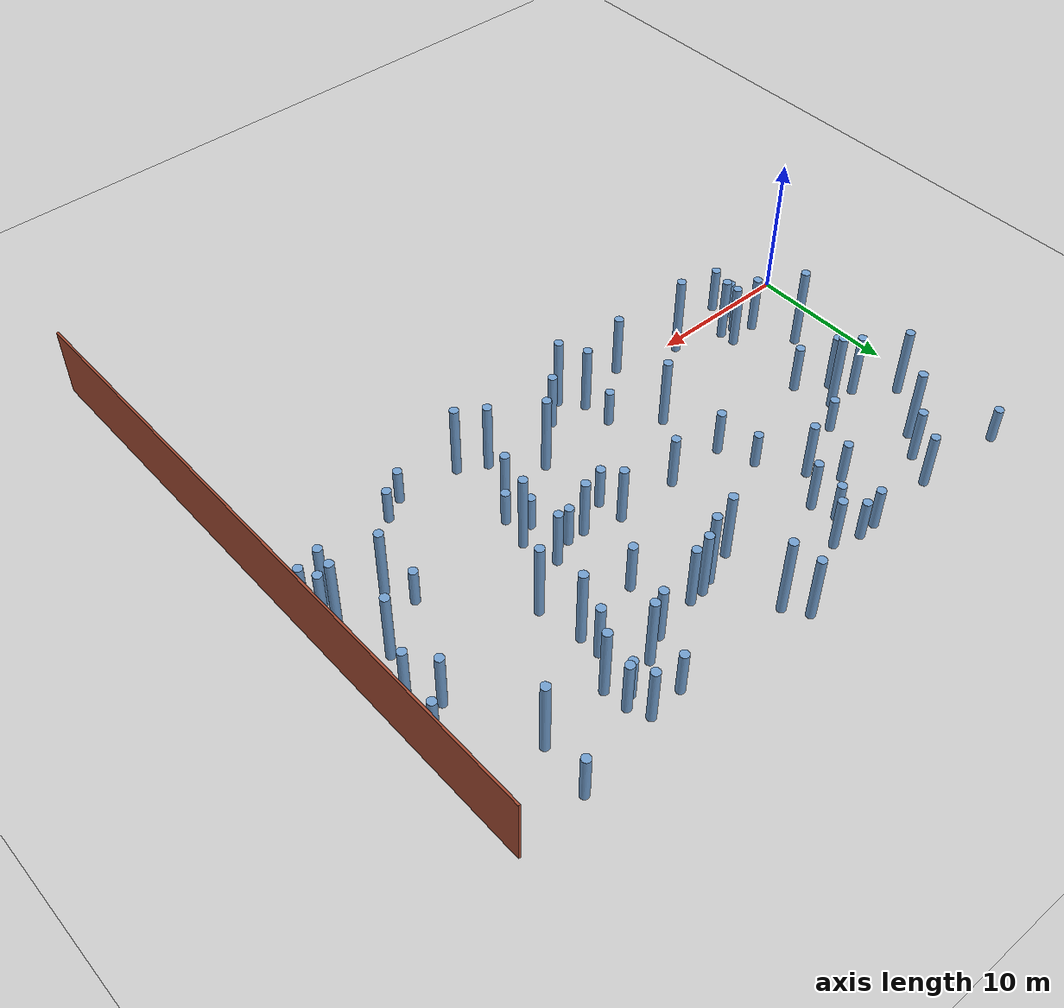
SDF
<sdf version="1.6">
 <world name="random_cylinder_world">
  <model name="ground_plane">
   <static>1</static>
   <link name="link">
    <collision name="collision">
     <geometry><plane><normal>0 0 1</normal><size>95.300000 95.300000</size></plane></geometry>
    </collision>
    <visual name="visual">
     <geometry><plane><normal>0 0 1</normal><size>95.300000 95.300000</size></plane></geometry>
     <material>
      <script><uri>file://media/materials/scripts/gazebo.material</uri><name>Gazebo/Grey</name></script>
     </material>
    </visual>
   </link>
  </model>
  <model name="wall_east">
   <static>1</static>
   <pose>42.575000 0.000000 2.500000 0 0 0</pose>
   <link name="link">
    <collision name="collision">
     <geometry><box><size>0.150000 45.000000 5.000000</size></box></geometry>
    </collision>
    <visual name="visual">
     <geometry><box><size>0.150000 45.000000 5.000000</size></box></geometry>
     <material>
      <script><uri>file://media/materials/scripts/gazebo.material</uri><name>Gazebo/Bricks</name></script>
     </material>
    </visual>
   </link>
  </model>
  <model name="cylinder_0005">
   <static>1</static>
   <pose>31.075353 15.848961 2.046685 0 0 0</pose>
   <link name="link">
    <collision name="collision">
     <geometry><cylinder><radius>0.300000</radius><length>4.093369</length></cylinder></geometry>
    </collision>
    <visual name="visual">
     <geometry><cylinder><radius>0.300000</radius><length>4.093369</length></cylinder></geometry>
     <material><ambient>0.447 0.624 0.812 1</ambient><diffuse>0.447 0.624 0.812 1</diffuse></material>
    </visual>
   </link>
  </model>
  <model name="cylinder_0016">
   <static>1</static>
   <pose>5.747271 17.535446 1.948364 0 0 0</pose>
   <link name="link">
    <collision name="collision">
     <geometry><cylinder><radius>0.300000</radius><length>3.896727</length></cylinder></geometry>
    </collision>
    <visual name="visual">
     <geometry><cylinder><radius>0.300000</radius><length>3.896727</length></cylinder></geometry>
     <material><ambient>0.447 0.624 0.812 1</ambient><diffuse>0.447 0.624 0.812 1</diffuse></material>
    </visual>
   </link>
  </model>
  <model name="cylinder_0019">
   <static>1</static>
   <pose>29.300762 18.098623 2.624567 0 0 0</pose>
   <link name="link">
    <collision name="collision">
     <geometry><cylinder><radius>0.300000</radius><length>5.249134</length></cylinder></geometry>
    </collision>
    <visual name="visual">
     <geometry><cylinder><radius>0.300000</radius><length>5.249134</length></cylinder></geometry>
     <material><ambient>0.447 0.624 0.812 1</ambient><diffuse>0.447 0.624 0.812 1</diffuse></material>
    </visual>
   </link>
  </model>
  <model name="cylinder_0022">
   <static>1</static>
   <pose>29.002762 7.027677 2.815912 0 0 0</pose>
   <link name="link">
    <collision name="collision">
     <geometry><cylinder><radius>0.300000</radius><length>5.631824</length></cylinder></geometry>
    </collision>
    <visual name="visual">
     <geometry><cylinder><radius>0.300000</radius><length>5.631824</length></cylinder></geometry>
     <material><ambient>0.447 0.624 0.812 1</ambient><diffuse>0.447 0.624 0.812 1</diffuse></material>
    </visual>
   </link>
  </model>
  <model name="cylinder_0027">
   <static>1</static>
   <pose>12.029360 19.653734 1.518698 0 0 0</pose>
   <link name="link">
    <collision name="collision">
     <geometry><cylinder><radius>0.300000</radius><length>3.037396</length></cylinder></geometry>
    </collision>
    <visual name="visual">
     <geometry><cylinder><radius>0.300000</radius><length>3.037396</length></cylinder></geometry>
     <material><ambient>0.447 0.624 0.812 1</ambient><diffuse>0.447 0.624 0.812 1</diffuse></material>
    </visual>
   </link>
  </model>
  <model name="cylinder_0033">
   <static>1</static>
   <pose>15.367054 5.006690 2.555880 0 0 0</pose>
   <link name="link">
    <collision name="collision">
     <geometry><cylinder><radius>0.300000</radius><length>5.111761</length></cylinder></geometry>
    </collision>
    <visual name="visual">
     <geometry><cylinder><radius>0.300000</radius><length>5.111761</length></cylinder></geometry>
     <material><ambient>0.447 0.624 0.812 1</ambient><diffuse>0.447 0.624 0.812 1</diffuse></material>
    </visual>
   </link>
  </model>
  <model name="cylinder_0037">
   <static>1</static>
   <pose>13.688556 11.460048 1.289756 0 0 0</pose>
   <link name="link">
    <collision name="collision">
     <geometry><cylinder><radius>0.300000</radius><length>2.579512</length></cylinder></geometry>
    </collision>
    <visual name="visual">
     <geometry><cylinder><radius>0.300000</radius><length>2.579512</length></cylinder></geometry>
     <material><ambient>0.447 0.624 0.812 1</ambient><diffuse>0.447 0.624 0.812 1</diffuse></material>
    </visual>
   </link>
  </model>
  <model name="cylinder_0042">
   <static>1</static>
   <pose>41.421360 2.105363 1.546955 0 0 0</pose>
   <link name="link">
    <collision name="collision">
     <geometry><cylinder><radius>0.300000</radius><length>3.093911</length></cylinder></geometry>
    </collision>
    <visual name="visual">
     <geometry><cylinder><radius>0.300000</radius><length>3.093911</length></cylinder></geometry>
     <material><ambient>0.447 0.624 0.812 1</ambient><diffuse>0.447 0.624 0.812 1</diffuse></material>
    </visual>
   </link>
  </model>
  <model name="cylinder_0043">
   <static>1</static>
   <pose>15.100041 19.144697 1.946210 0 0 0</pose>
   <link name="link">
    <collision name="collision">
     <geometry><cylinder><radius>0.300000</radius><length>3.892419</length></cylinder></geometry>
    </collision>
    <visual name="visual">
     <geometry><cylinder><radius>0.300000</radius><length>3.892419</length></cylinder></geometry>
     <material><ambient>0.447 0.624 0.812 1</ambient><diffuse>0.447 0.624 0.812 1</diffuse></material>
    </visual>
   </link>
  </model>
  <model name="cylinder_0045">
   <static>1</static>
   <pose>27.686785 17.218603 2.058826 0 0 0</pose>
   <link name="link">
    <collision name="collision">
     <geometry><cylinder><radius>0.300000</radius><length>4.117652</length></cylinder></geometry>
    </collision>
    <visual name="visual">
     <geometry><cylinder><radius>0.300000</radius><length>4.117652</length></cylinder></geometry>
     <material><ambient>0.447 0.624 0.812 1</ambient><diffuse>0.447 0.624 0.812 1</diffuse></material>
    </visual>
   </link>
  </model>
  <model name="cylinder_0049">
   <static>1</static>
   <pose>27.684963 6.198248 1.252360 0 0 0</pose>
   <link name="link">
    <collision name="collision">
     <geometry><cylinder><radius>0.300000</radius><length>2.504719</length></cylinder></geometry>
    </collision>
    <visual name="visual">
     <geometry><cylinder><radius>0.300000</radius><length>2.504719</length></cylinder></geometry>
     <material><ambient>0.447 0.624 0.812 1</ambient><diffuse>0.447 0.624 0.812 1</diffuse></material>
    </visual>
   </link>
  </model>
  <model name="cylinder_0054">
   <static>1</static>
   <pose>23.551938 16.552618 2.496617 0 0 0</pose>
   <link name="link">
    <collision name="collision">
     <geometry><cylinder><radius>0.300000</radius><length>4.993233</length></cylinder></geometry>
    </collision>
    <visual name="visual">
     <geometry><cylinder><radius>0.300000</radius><length>4.993233</length></cylinder></geometry>
     <material><ambient>0.447 0.624 0.812 1</ambient><diffuse>0.447 0.624 0.812 1</diffuse></material>
    </visual>
   </link>
  </model>
  <model name="cylinder_0058">
   <static>1</static>
   <pose>6.313965 2.621713 1.815099 0 0 0</pose>
   <link name="link">
    <collision name="collision">
     <geometry><cylinder><radius>0.300000</radius><length>3.630197</length></cylinder></geometry>
    </collision>
    <visual name="visual">
     <geometry><cylinder><radius>0.300000</radius><length>3.630197</length></cylinder></geometry>
     <material><ambient>0.447 0.624 0.812 1</ambient><diffuse>0.447 0.624 0.812 1</diffuse></material>
    </visual>
   </link>
  </model>
  <model name="cylinder_0062">
   <static>1</static>
   <pose>26.473143 13.577469 1.838859 0 0 0</pose>
   <link name="link">
    <collision name="collision">
     <geometry><cylinder><radius>0.300000</radius><length>3.677719</length></cylinder></geometry>
    </collision>
    <visual name="visual">
     <geometry><cylinder><radius>0.300000</radius><length>3.677719</length></cylinder></geometry>
     <material><ambient>0.447 0.624 0.812 1</ambient><diffuse>0.447 0.624 0.812 1</diffuse></material>
    </visual>
   </link>
  </model>
  <model name="cylinder_0064">
   <static>1</static>
   <pose>18.051042 2.734417 1.321632 0 0 0</pose>
   <link name="link">
    <collision name="collision">
     <geometry><cylinder><radius>0.300000</radius><length>2.643263</length></cylinder></geometry>
    </collision>
    <visual name="visual">
     <geometry><cylinder><radius>0.300000</radius><length>2.643263</length></cylinder></geometry>
     <material><ambient>0.447 0.624 0.812 1</ambient><diffuse>0.447 0.624 0.812 1</diffuse></material>
    </visual>
   </link>
  </model>
  <model name="cylinder_0066">
   <static>1</static>
   <pose>37.434204 4.539991 2.585682 0 0 0</pose>
   <link name="link">
    <collision name="collision">
     <geometry><cylinder><radius>0.300000</radius><length>5.171364</length></cylinder></geometry>
    </collision>
    <visual name="visual">
     <geometry><cylinder><radius>0.300000</radius><length>5.171364</length></cylinder></geometry>
     <material><ambient>0.447 0.624 0.812 1</ambient><diffuse>0.447 0.624 0.812 1</diffuse></material>
    </visual>
   </link>
  </model>
  <model name="cylinder_0067">
   <static>1</static>
   <pose>33.812060 0.175115 1.251444 0 0 0</pose>
   <link name="link">
    <collision name="collision">
     <geometry><cylinder><radius>0.300000</radius><length>2.502888</length></cylinder></geometry>
    </collision>
    <visual name="visual">
     <geometry><cylinder><radius>0.300000</radius><length>2.502888</length></cylinder></geometry>
     <material><ambient>0.447 0.624 0.812 1</ambient><diffuse>0.447 0.624 0.812 1</diffuse></material>
    </visual>
   </link>
  </model>
  <model name="cylinder_0068">
   <static>1</static>
   <pose>13.749673 16.184484 1.881603 0 0 0</pose>
   <link name="link">
    <collision name="collision">
     <geometry><cylinder><radius>0.300000</radius><length>3.763207</length></cylinder></geometry>
    </collision>
    <visual name="visual">
     <geometry><cylinder><radius>0.300000</radius><length>3.763207</length></cylinder></geometry>
     <material><ambient>0.447 0.624 0.812 1</ambient><diffuse>0.447 0.624 0.812 1</diffuse></material>
    </visual>
   </link>
  </model>
  <model name="cylinder_0074">
   <static>1</static>
   <pose>7.735773 12.456178 1.261383 0 0 0</pose>
   <link name="link">
    <collision name="collision">
     <geometry><cylinder><radius>0.300000</radius><length>2.522765</length></cylinder></geometry>
    </collision>
    <visual name="visual">
     <geometry><cylinder><radius>0.300000</radius><length>2.522765</length></cylinder></geometry>
     <material><ambient>0.447 0.624 0.812 1</ambient><diffuse>0.447 0.624 0.812 1</diffuse></material>
    </visual>
   </link>
  </model>
  <model name="cylinder_0075">
   <static>1</static>
   <pose>6.395126 1.565246 2.307043 0 0 0</pose>
   <link name="link">
    <collision name="collision">
     <geometry><cylinder><radius>0.300000</radius><length>4.614085</length></cylinder></geometry>
    </collision>
    <visual name="visual">
     <geometry><cylinder><radius>0.300000</radius><length>4.614085</length></cylinder></geometry>
     <material><ambient>0.447 0.624 0.812 1</ambient><diffuse>0.447 0.624 0.812 1</diffuse></material>
    </visual>
   </link>
  </model>
  <model name="cylinder_0079">
   <static>1</static>
   <pose>32.408139 19.511370 1.969243 0 0 0</pose>
   <link name="link">
    <collision name="collision">
     <geometry><cylinder><radius>0.300000</radius><length>3.938486</length></cylinder></geometry>
    </collision>
    <visual name="visual">
     <geometry><cylinder><radius>0.300000</radius><length>3.938486</length></cylinder></geometry>
     <material><ambient>0.447 0.624 0.812 1</ambient><diffuse>0.447 0.624 0.812 1</diffuse></material>
    </visual>
   </link>
  </model>
  <model name="cylinder_0084">
   <static>1</static>
   <pose>40.881699 4.712839 2.714236 0 0 0</pose>
   <link name="link">
    <collision name="collision">
     <geometry><cylinder><radius>0.300000</radius><length>5.428473</length></cylinder></geometry>
    </collision>
    <visual name="visual">
     <geometry><cylinder><radius>0.300000</radius><length>5.428473</length></cylinder></geometry>
     <material><ambient>0.447 0.624 0.812 1</ambient><diffuse>0.447 0.624 0.812 1</diffuse></material>
    </visual>
   </link>
  </model>
  <model name="cylinder_0085">
   <static>1</static>
   <pose>41.239235 13.951335 1.477172 0 0 0</pose>
   <link name="link">
    <collision name="collision">
     <geometry><cylinder><radius>0.300000</radius><length>2.954343</length></cylinder></geometry>
    </collision>
    <visual name="visual">
     <geometry><cylinder><radius>0.300000</radius><length>2.954343</length></cylinder></geometry>
     <material><ambient>0.447 0.624 0.812 1</ambient><diffuse>0.447 0.624 0.812 1</diffuse></material>
    </visual>
   </link>
  </model>
  <model name="cylinder_0092">
   <static>1</static>
   <pose>10.551449 15.862191 1.513016 0 0 0</pose>
   <link name="link">
    <collision name="collision">
     <geometry><cylinder><radius>0.300000</radius><length>3.026032</length></cylinder></geometry>
    </collision>
    <visual name="visual">
     <geometry><cylinder><radius>0.300000</radius><length>3.026032</length></cylinder></geometry>
     <material><ambient>0.447 0.624 0.812 1</ambient><diffuse>0.447 0.624 0.812 1</diffuse></material>
    </visual>
   </link>
  </model>
  <model name="cylinder_0094">
   <static>1</static>
   <pose>32.582886 17.894738 2.623910 0 0 0</pose>
   <link name="link">
    <collision name="collision">
     <geometry><cylinder><radius>0.300000</radius><length>5.247820</length></cylinder></geometry>
    </collision>
    <visual name="visual">
     <geometry><cylinder><radius>0.300000</radius><length>5.247820</length></cylinder></geometry>
     <material><ambient>0.447 0.624 0.812 1</ambient><diffuse>0.447 0.624 0.812 1</diffuse></material>
    </visual>
   </link>
  </model>
  <model name="cylinder_0096">
   <static>1</static>
   <pose>18.223109 0.737945 2.446607 0 0 0</pose>
   <link name="link">
    <collision name="collision">
     <geometry><cylinder><radius>0.300000</radius><length>4.893213</length></cylinder></geometry>
    </collision>
    <visual name="visual">
     <geometry><cylinder><radius>0.300000</radius><length>4.893213</length></cylinder></geometry>
     <material><ambient>0.447 0.624 0.812 1</ambient><diffuse>0.447 0.624 0.812 1</diffuse></material>
    </visual>
   </link>
  </model>
  <model name="cylinder_0101">
   <static>1</static>
   <pose>3.999624 11.127164 2.334558 0 0 0</pose>
   <link name="link">
    <collision name="collision">
     <geometry><cylinder><radius>0.300000</radius><length>4.669117</length></cylinder></geometry>
    </collision>
    <visual name="visual">
     <geometry><cylinder><radius>0.300000</radius><length>4.669117</length></cylinder></geometry>
     <material><ambient>0.447 0.624 0.812 1</ambient><diffuse>0.447 0.624 0.812 1</diffuse></material>
    </visual>
   </link>
  </model>
  <model name="cylinder_0103">
   <static>1</static>
   <pose>13.333525 19.698483 1.482729 0 0 0</pose>
   <link name="link">
    <collision name="collision">
     <geometry><cylinder><radius>0.300000</radius><length>2.965457</length></cylinder></geometry>
    </collision>
    <visual name="visual">
     <geometry><cylinder><radius>0.300000</radius><length>2.965457</length></cylinder></geometry>
     <material><ambient>0.447 0.624 0.812 1</ambient><diffuse>0.447 0.624 0.812 1</diffuse></material>
    </visual>
   </link>
  </model>
  <model name="cylinder_0108">
   <static>1</static>
   <pose>22.653000 16.202762 2.804748 0 0 0</pose>
   <link name="link">
    <collision name="collision">
     <geometry><cylinder><radius>0.300000</radius><length>5.609497</length></cylinder></geometry>
    </collision>
    <visual name="visual">
     <geometry><cylinder><radius>0.300000</radius><length>5.609497</length></cylinder></geometry>
     <material><ambient>0.447 0.624 0.812 1</ambient><diffuse>0.447 0.624 0.812 1</diffuse></material>
    </visual>
   </link>
  </model>
  <model name="cylinder_0109">
   <static>1</static>
   <pose>6.617074 8.405994 1.751600 0 0 0</pose>
   <link name="link">
    <collision name="collision">
     <geometry><cylinder><radius>0.300000</radius><length>3.503200</length></cylinder></geometry>
    </collision>
    <visual name="visual">
     <geometry><cylinder><radius>0.300000</radius><length>3.503200</length></cylinder></geometry>
     <material><ambient>0.447 0.624 0.812 1</ambient><diffuse>0.447 0.624 0.812 1</diffuse></material>
    </visual>
   </link>
  </model>
  <model name="cylinder_0112">
   <static>1</static>
   <pose>24.581019 16.615739 2.314531 0 0 0</pose>
   <link name="link">
    <collision name="collision">
     <geometry><cylinder><radius>0.300000</radius><length>4.629061</length></cylinder></geometry>
    </collision>
    <visual name="visual">
     <geometry><cylinder><radius>0.300000</radius><length>4.629061</length></cylinder></geometry>
     <material><ambient>0.447 0.624 0.812 1</ambient><diffuse>0.447 0.624 0.812 1</diffuse></material>
    </visual>
   </link>
  </model>
  <model name="cylinder_0114">
   <static>1</static>
   <pose>14.608394 9.113277 1.633509 0 0 0</pose>
   <link name="link">
    <collision name="collision">
     <geometry><cylinder><radius>0.300000</radius><length>3.267018</length></cylinder></geometry>
    </collision>
    <visual name="visual">
     <geometry><cylinder><radius>0.300000</radius><length>3.267018</length></cylinder></geometry>
     <material><ambient>0.447 0.624 0.812 1</ambient><diffuse>0.447 0.624 0.812 1</diffuse></material>
    </visual>
   </link>
  </model>
  <model name="cylinder_0122">
   <static>1</static>
   <pose>40.839786 10.950811 1.916250 0 0 0</pose>
   <link name="link">
    <collision name="collision">
     <geometry><cylinder><radius>0.300000</radius><length>3.832501</length></cylinder></geometry>
    </collision>
    <visual name="visual">
     <geometry><cylinder><radius>0.300000</radius><length>3.832501</length></cylinder></geometry>
     <material><ambient>0.447 0.624 0.812 1</ambient><diffuse>0.447 0.624 0.812 1</diffuse></material>
    </visual>
   </link>
  </model>
  <model name="cylinder_0130">
   <static>1</static>
   <pose>32.361095 -0.667740 1.272926 0 0 0</pose>
   <link name="link">
    <collision name="collision">
     <geometry><cylinder><radius>0.300000</radius><length>2.545852</length></cylinder></geometry>
    </collision>
    <visual name="visual">
     <geometry><cylinder><radius>0.300000</radius><length>2.545852</length></cylinder></geometry>
     <material><ambient>0.447 0.624 0.812 1</ambient><diffuse>0.447 0.624 0.812 1</diffuse></material>
    </visual>
   </link>
  </model>
  <model name="cylinder_0136">
   <static>1</static>
   <pose>31.801469 20.789403 2.059737 0 0 0</pose>
   <link name="link">
    <collision name="collision">
     <geometry><cylinder><radius>0.300000</radius><length>4.119473</length></cylinder></geometry>
    </collision>
    <visual name="visual">
     <geometry><cylinder><radius>0.300000</radius><length>4.119473</length></cylinder></geometry>
     <material><ambient>0.447 0.624 0.812 1</ambient><diffuse>0.447 0.624 0.812 1</diffuse></material>
    </visual>
   </link>
  </model>
  <model name="cylinder_0137">
   <static>1</static>
   <pose>26.824987 8.602728 1.484235 0 0 0</pose>
   <link name="link">
    <collision name="collision">
     <geometry><cylinder><radius>0.300000</radius><length>2.968471</length></cylinder></geometry>
    </collision>
    <visual name="visual">
     <geometry><cylinder><radius>0.300000</radius><length>2.968471</length></cylinder></geometry>
     <material><ambient>0.447 0.624 0.812 1</ambient><diffuse>0.447 0.624 0.812 1</diffuse></material>
    </visual>
   </link>
  </model>
  <model name="cylinder_0138">
   <static>1</static>
   <pose>31.631875 11.462735 2.783256 0 0 0</pose>
   <link name="link">
    <collision name="collision">
     <geometry><cylinder><radius>0.300000</radius><length>5.566511</length></cylinder></geometry>
    </collision>
    <visual name="visual">
     <geometry><cylinder><radius>0.300000</radius><length>5.566511</length></cylinder></geometry>
     <material><ambient>0.447 0.624 0.812 1</ambient><diffuse>0.447 0.624 0.812 1</diffuse></material>
    </visual>
   </link>
  </model>
  <model name="cylinder_0141">
   <static>1</static>
   <pose>28.177078 -0.274068 2.627467 0 0 0</pose>
   <link name="link">
    <collision name="collision">
     <geometry><cylinder><radius>0.300000</radius><length>5.254934</length></cylinder></geometry>
    </collision>
    <visual name="visual">
     <geometry><cylinder><radius>0.300000</radius><length>5.254934</length></cylinder></geometry>
     <material><ambient>0.447 0.624 0.812 1</ambient><diffuse>0.447 0.624 0.812 1</diffuse></material>
    </visual>
   </link>
  </model>
  <model name="cylinder_0142">
   <static>1</static>
   <pose>20.080174 21.757334 2.418901 0 0 0</pose>
   <link name="link">
    <collision name="collision">
     <geometry><cylinder><radius>0.300000</radius><length>4.837801</length></cylinder></geometry>
    </collision>
    <visual name="visual">
     <geometry><cylinder><radius>0.300000</radius><length>4.837801</length></cylinder></geometry>
     <material><ambient>0.447 0.624 0.812 1</ambient><diffuse>0.447 0.624 0.812 1</diffuse></material>
    </visual>
   </link>
  </model>
  <model name="cylinder_0146">
   <static>1</static>
   <pose>28.357605 9.364256 2.098748 0 0 0</pose>
   <link name="link">
    <collision name="collision">
     <geometry><cylinder><radius>0.300000</radius><length>4.197496</length></cylinder></geometry>
    </collision>
    <visual name="visual">
     <geometry><cylinder><radius>0.300000</radius><length>4.197496</length></cylinder></geometry>
     <material><ambient>0.447 0.624 0.812 1</ambient><diffuse>0.447 0.624 0.812 1</diffuse></material>
    </visual>
   </link>
  </model>
  <model name="cylinder_0156">
   <static>1</static>
   <pose>4.811087 -0.806175 1.669414 0 0 0</pose>
   <link name="link">
    <collision name="collision">
     <geometry><cylinder><radius>0.300000</radius><length>3.338829</length></cylinder></geometry>
    </collision>
    <visual name="visual">
     <geometry><cylinder><radius>0.300000</radius><length>3.338829</length></cylinder></geometry>
     <material><ambient>0.447 0.624 0.812 1</ambient><diffuse>0.447 0.624 0.812 1</diffuse></material>
    </visual>
   </link>
  </model>
  <model name="cylinder_0159">
   <static>1</static>
   <pose>31.662649 19.033962 1.573784 0 0 0</pose>
   <link name="link">
    <collision name="collision">
     <geometry><cylinder><radius>0.300000</radius><length>3.147569</length></cylinder></geometry>
    </collision>
    <visual name="visual">
     <geometry><cylinder><radius>0.300000</radius><length>3.147569</length></cylinder></geometry>
     <material><ambient>0.447 0.624 0.812 1</ambient><diffuse>0.447 0.624 0.812 1</diffuse></material>
    </visual>
   </link>
  </model>
  <model name="cylinder_0168">
   <static>1</static>
   <pose>3.083675 5.299267 2.963325 0 0 0</pose>
   <link name="link">
    <collision name="collision">
     <geometry><cylinder><radius>0.300000</radius><length>5.926649</length></cylinder></geometry>
    </collision>
    <visual name="visual">
     <geometry><cylinder><radius>0.300000</radius><length>5.926649</length></cylinder></geometry>
     <material><ambient>0.447 0.624 0.812 1</ambient><diffuse>0.447 0.624 0.812 1</diffuse></material>
    </visual>
   </link>
  </model>
  <model name="cylinder_0171">
   <static>1</static>
   <pose>37.724488 21.949135 1.709868 0 0 0</pose>
   <link name="link">
    <collision name="collision">
     <geometry><cylinder><radius>0.300000</radius><length>3.419736</length></cylinder></geometry>
    </collision>
    <visual name="visual">
     <geometry><cylinder><radius>0.300000</radius><length>3.419736</length></cylinder></geometry>
     <material><ambient>0.447 0.624 0.812 1</ambient><diffuse>0.447 0.624 0.812 1</diffuse></material>
    </visual>
   </link>
  </model>
  <model name="cylinder_0174">
   <static>1</static>
   <pose>25.620190 8.659971 2.140724 0 0 0</pose>
   <link name="link">
    <collision name="collision">
     <geometry><cylinder><radius>0.300000</radius><length>4.281448</length></cylinder></geometry>
    </collision>
    <visual name="visual">
     <geometry><cylinder><radius>0.300000</radius><length>4.281448</length></cylinder></geometry>
     <material><ambient>0.447 0.624 0.812 1</ambient><diffuse>0.447 0.624 0.812 1</diffuse></material>
    </visual>
   </link>
  </model>
  <model name="cylinder_0182">
   <static>1</static>
   <pose>31.123976 14.435298 2.835432 0 0 0</pose>
   <link name="link">
    <collision name="collision">
     <geometry><cylinder><radius>0.300000</radius><length>5.670864</length></cylinder></geometry>
    </collision>
    <visual name="visual">
     <geometry><cylinder><radius>0.300000</radius><length>5.670864</length></cylinder></geometry>
     <material><ambient>0.447 0.624 0.812 1</ambient><diffuse>0.447 0.624 0.812 1</diffuse></material>
    </visual>
   </link>
  </model>
  <model name="cylinder_0184">
   <static>1</static>
   <pose>4.434219 16.156409 2.654999 0 0 0</pose>
   <link name="link">
    <collision name="collision">
     <geometry><cylinder><radius>0.300000</radius><length>5.309998</length></cylinder></geometry>
    </collision>
    <visual name="visual">
     <geometry><cylinder><radius>0.300000</radius><length>5.309998</length></cylinder></geometry>
     <material><ambient>0.447 0.624 0.812 1</ambient><diffuse>0.447 0.624 0.812 1</diffuse></material>
    </visual>
   </link>
  </model>
  <model name="cylinder_0185">
   <static>1</static>
   <pose>40.435398 2.872839 2.352842 0 0 0</pose>
   <link name="link">
    <collision name="collision">
     <geometry><cylinder><radius>0.300000</radius><length>4.705683</length></cylinder></geometry>
    </collision>
    <visual name="visual">
     <geometry><cylinder><radius>0.300000</radius><length>4.705683</length></cylinder></geometry>
     <material><ambient>0.447 0.624 0.812 1</ambient><diffuse>0.447 0.624 0.812 1</diffuse></material>
    </visual>
   </link>
  </model>
  <model name="cylinder_0204">
   <static>1</static>
   <pose>14.302070 -0.499035 2.250212 0 0 0</pose>
   <link name="link">
    <collision name="collision">
     <geometry><cylinder><radius>0.300000</radius><length>4.500424</length></cylinder></geometry>
    </collision>
    <visual name="visual">
     <geometry><cylinder><radius>0.300000</radius><length>4.500424</length></cylinder></geometry>
     <material><ambient>0.447 0.624 0.812 1</ambient><diffuse>0.447 0.624 0.812 1</diffuse></material>
    </visual>
   </link>
  </model>
  <model name="cylinder_0208">
   <static>1</static>
   <pose>41.713602 4.769182 2.586213 0 0 0</pose>
   <link name="link">
    <collision name="collision">
     <geometry><cylinder><radius>0.300000</radius><length>5.172427</length></cylinder></geometry>
    </collision>
    <visual name="visual">
     <geometry><cylinder><radius>0.300000</radius><length>5.172427</length></cylinder></geometry>
     <material><ambient>0.447 0.624 0.812 1</ambient><diffuse>0.447 0.624 0.812 1</diffuse></material>
    </visual>
   </link>
  </model>
  <model name="cylinder_0209">
   <static>1</static>
   <pose>29.375101 20.566936 1.639480 0 0 0</pose>
   <link name="link">
    <collision name="collision">
     <geometry><cylinder><radius>0.300000</radius><length>3.278960</length></cylinder></geometry>
    </collision>
    <visual name="visual">
     <geometry><cylinder><radius>0.300000</radius><length>3.278960</length></cylinder></geometry>
     <material><ambient>0.447 0.624 0.812 1</ambient><diffuse>0.447 0.624 0.812 1</diffuse></material>
    </visual>
   </link>
  </model>
  <model name="cylinder_0212">
   <static>1</static>
   <pose>23.361333 7.572096 1.533487 0 0 0</pose>
   <link name="link">
    <collision name="collision">
     <geometry><cylinder><radius>0.300000</radius><length>3.066974</length></cylinder></geometry>
    </collision>
    <visual name="visual">
     <geometry><cylinder><radius>0.300000</radius><length>3.066974</length></cylinder></geometry>
     <material><ambient>0.447 0.624 0.812 1</ambient><diffuse>0.447 0.624 0.812 1</diffuse></material>
    </visual>
   </link>
  </model>
  <model name="cylinder_0217">
   <static>1</static>
   <pose>19.370412 -0.704200 2.628760 0 0 0</pose>
   <link name="link">
    <collision name="collision">
     <geometry><cylinder><radius>0.300000</radius><length>5.257520</length></cylinder></geometry>
    </collision>
    <visual name="visual">
     <geometry><cylinder><radius>0.300000</radius><length>5.257520</length></cylinder></geometry>
     <material><ambient>0.447 0.624 0.812 1</ambient><diffuse>0.447 0.624 0.812 1</diffuse></material>
    </visual>
   </link>
  </model>
  <model name="cylinder_0218">
   <static>1</static>
   <pose>20.930586 0.491272 2.047770 0 0 0</pose>
   <link name="link">
    <collision name="collision">
     <geometry><cylinder><radius>0.300000</radius><length>4.095541</length></cylinder></geometry>
    </collision>
    <visual name="visual">
     <geometry><cylinder><radius>0.300000</radius><length>4.095541</length></cylinder></geometry>
     <material><ambient>0.447 0.624 0.812 1</ambient><diffuse>0.447 0.624 0.812 1</diffuse></material>
    </visual>
   </link>
  </model>
  <model name="cylinder_0220">
   <static>1</static>
   <pose>0.667299 19.784245 1.273556 0 0 0</pose>
   <link name="link">
    <collision name="collision">
     <geometry><cylinder><radius>0.300000</radius><length>2.547112</length></cylinder></geometry>
    </collision>
    <visual name="visual">
     <geometry><cylinder><radius>0.300000</radius><length>2.547112</length></cylinder></geometry>
     <material><ambient>0.447 0.624 0.812 1</ambient><diffuse>0.447 0.624 0.812 1</diffuse></material>
    </visual>
   </link>
  </model>
  <model name="cylinder_0226">
   <static>1</static>
   <pose>26.391358 0.672684 2.527862 0 0 0</pose>
   <link name="link">
    <collision name="collision">
     <geometry><cylinder><radius>0.300000</radius><length>5.055723</length></cylinder></geometry>
    </collision>
    <visual name="visual">
     <geometry><cylinder><radius>0.300000</radius><length>5.055723</length></cylinder></geometry>
     <material><ambient>0.447 0.624 0.812 1</ambient><diffuse>0.447 0.624 0.812 1</diffuse></material>
    </visual>
   </link>
  </model>
  <model name="cylinder_0227">
   <static>1</static>
   <pose>39.727172 12.759729 2.068763 0 0 0</pose>
   <link name="link">
    <collision name="collision">
     <geometry><cylinder><radius>0.300000</radius><length>4.137526</length></cylinder></geometry>
    </collision>
    <visual name="visual">
     <geometry><cylinder><radius>0.300000</radius><length>4.137526</length></cylinder></geometry>
     <material><ambient>0.447 0.624 0.812 1</ambient><diffuse>0.447 0.624 0.812 1</diffuse></material>
    </visual>
   </link>
  </model>
  <model name="cylinder_0229">
   <static>1</static>
   <pose>6.991203 19.435349 2.000703 0 0 0</pose>
   <link name="link">
    <collision name="collision">
     <geometry><cylinder><radius>0.300000</radius><length>4.001406</length></cylinder></geometry>
    </collision>
    <visual name="visual">
     <geometry><cylinder><radius>0.300000</radius><length>4.001406</length></cylinder></geometry>
     <material><ambient>0.447 0.624 0.812 1</ambient><diffuse>0.447 0.624 0.812 1</diffuse></material>
    </visual>
   </link>
  </model>
  <model name="cylinder_0231">
   <static>1</static>
   <pose>1.688593 13.018205 2.525293 0 0 0</pose>
   <link name="link">
    <collision name="collision">
     <geometry><cylinder><radius>0.300000</radius><length>5.050585</length></cylinder></geometry>
    </collision>
    <visual name="visual">
     <geometry><cylinder><radius>0.300000</radius><length>5.050585</length></cylinder></geometry>
     <material><ambient>0.447 0.624 0.812 1</ambient><diffuse>0.447 0.624 0.812 1</diffuse></material>
    </visual>
   </link>
  </model>
  <model name="cylinder_0232">
   <static>1</static>
   <pose>5.372250 1.686000 1.778789 0 0 0</pose>
   <link name="link">
    <collision name="collision">
     <geometry><cylinder><radius>0.300000</radius><length>3.557577</length></cylinder></geometry>
    </collision>
    <visual name="visual">
     <geometry><cylinder><radius>0.300000</radius><length>3.557577</length></cylinder></geometry>
     <material><ambient>0.447 0.624 0.812 1</ambient><diffuse>0.447 0.624 0.812 1</diffuse></material>
    </visual>
   </link>
  </model>
  <model name="cylinder_0235">
   <static>1</static>
   <pose>13.310249 17.779701 1.422291 0 0 0</pose>
   <link name="link">
    <collision name="collision">
     <geometry><cylinder><radius>0.300000</radius><length>2.844582</length></cylinder></geometry>
    </collision>
    <visual name="visual">
     <geometry><cylinder><radius>0.300000</radius><length>2.844582</length></cylinder></geometry>
     <material><ambient>0.447 0.624 0.812 1</ambient><diffuse>0.447 0.624 0.812 1</diffuse></material>
    </visual>
   </link>
  </model>
  <model name="cylinder_0236">
   <static>1</static>
   <pose>23.749341 3.109642 2.865596 0 0 0</pose>
   <link name="link">
    <collision name="collision">
     <geometry><cylinder><radius>0.300000</radius><length>5.731192</length></cylinder></geometry>
    </collision>
    <visual name="visual">
     <geometry><cylinder><radius>0.300000</radius><length>5.731192</length></cylinder></geometry>
     <material><ambient>0.447 0.624 0.812 1</ambient><diffuse>0.447 0.624 0.812 1</diffuse></material>
    </visual>
   </link>
  </model>
  <model name="cylinder_0240">
   <static>1</static>
   <pose>4.552621 0.366785 1.396513 0 0 0</pose>
   <link name="link">
    <collision name="collision">
     <geometry><cylinder><radius>0.300000</radius><length>2.793027</length></cylinder></geometry>
    </collision>
    <visual name="visual">
     <geometry><cylinder><radius>0.300000</radius><length>2.793027</length></cylinder></geometry>
     <material><ambient>0.447 0.624 0.812 1</ambient><diffuse>0.447 0.624 0.812 1</diffuse></material>
    </visual>
   </link>
  </model>
  <model name="cylinder_0248">
   <static>1</static>
   <pose>20.475430 15.423224 2.531312 0 0 0</pose>
   <link name="link">
    <collision name="collision">
     <geometry><cylinder><radius>0.300000</radius><length>5.062624</length></cylinder></geometry>
    </collision>
    <visual name="visual">
     <geometry><cylinder><radius>0.300000</radius><length>5.062624</length></cylinder></geometry>
     <material><ambient>0.447 0.624 0.812 1</ambient><diffuse>0.447 0.624 0.812 1</diffuse></material>
    </visual>
   </link>
  </model>
  <model name="cylinder_0257">
   <static>1</static>
   <pose>26.958672 2.963794 1.526832 0 0 0</pose>
   <link name="link">
    <collision name="collision">
     <geometry><cylinder><radius>0.300000</radius><length>3.053663</length></cylinder></geometry>
    </collision>
    <visual name="visual">
     <geometry><cylinder><radius>0.300000</radius><length>3.053663</length></cylinder></geometry>
     <material><ambient>0.447 0.624 0.812 1</ambient><diffuse>0.447 0.624 0.812 1</diffuse></material>
    </visual>
   </link>
  </model>
  <model name="cylinder_0259">
   <static>1</static>
   <pose>5.990249 11.053760 2.852090 0 0 0</pose>
   <link name="link">
    <collision name="collision">
     <geometry><cylinder><radius>0.300000</radius><length>5.704180</length></cylinder></geometry>
    </collision>
    <visual name="visual">
     <geometry><cylinder><radius>0.300000</radius><length>5.704180</length></cylinder></geometry>
     <material><ambient>0.447 0.624 0.812 1</ambient><diffuse>0.447 0.624 0.812 1</diffuse></material>
    </visual>
   </link>
  </model>
  <model name="cylinder_0262">
   <static>1</static>
   <pose>28.596375 4.945522 1.265945 0 0 0</pose>
   <link name="link">
    <collision name="collision">
     <geometry><cylinder><radius>0.300000</radius><length>2.531890</length></cylinder></geometry>
    </collision>
    <visual name="visual">
     <geometry><cylinder><radius>0.300000</radius><length>2.531890</length></cylinder></geometry>
     <material><ambient>0.447 0.624 0.812 1</ambient><diffuse>0.447 0.624 0.812 1</diffuse></material>
    </visual>
   </link>
  </model>
  <model name="cylinder_0277">
   <static>1</static>
   <pose>18.786176 9.266994 1.952596 0 0 0</pose>
   <link name="link">
    <collision name="collision">
     <geometry><cylinder><radius>0.300000</radius><length>3.905191</length></cylinder></geometry>
    </collision>
    <visual name="visual">
     <geometry><cylinder><radius>0.300000</radius><length>3.905191</length></cylinder></geometry>
     <material><ambient>0.447 0.624 0.812 1</ambient><diffuse>0.447 0.624 0.812 1</diffuse></material>
    </visual>
   </link>
  </model>
  <model name="cylinder_0282">
   <static>1</static>
   <pose>36.485240 6.210682 1.353866 0 0 0</pose>
   <link name="link">
    <collision name="collision">
     <geometry><cylinder><radius>0.300000</radius><length>2.707732</length></cylinder></geometry>
    </collision>
    <visual name="visual">
     <geometry><cylinder><radius>0.300000</radius><length>2.707732</length></cylinder></geometry>
     <material><ambient>0.447 0.624 0.812 1</ambient><diffuse>0.447 0.624 0.812 1</diffuse></material>
    </visual>
   </link>
  </model>
  <model name="cylinder_0286">
   <static>1</static>
   <pose>37.358754 18.446549 2.742344 0 0 0</pose>
   <link name="link">
    <collision name="collision">
     <geometry><cylinder><radius>0.300000</radius><length>5.484688</length></cylinder></geometry>
    </collision>
    <visual name="visual">
     <geometry><cylinder><radius>0.300000</radius><length>5.484688</length></cylinder></geometry>
     <material><ambient>0.447 0.624 0.812 1</ambient><diffuse>0.447 0.624 0.812 1</diffuse></material>
    </visual>
   </link>
  </model>
  <model name="cylinder_0290">
   <static>1</static>
   <pose>4.715809 9.784212 2.099630 0 0 0</pose>
   <link name="link">
    <collision name="collision">
     <geometry><cylinder><radius>0.300000</radius><length>4.199260</length></cylinder></geometry>
    </collision>
    <visual name="visual">
     <geometry><cylinder><radius>0.300000</radius><length>4.199260</length></cylinder></geometry>
     <material><ambient>0.447 0.624 0.812 1</ambient><diffuse>0.447 0.624 0.812 1</diffuse></material>
    </visual>
   </link>
  </model>
  <model name="cylinder_0291">
   <static>1</static>
   <pose>21.036367 20.365095 2.926948 0 0 0</pose>
   <link name="link">
    <collision name="collision">
     <geometry><cylinder><radius>0.300000</radius><length>5.853895</length></cylinder></geometry>
    </collision>
    <visual name="visual">
     <geometry><cylinder><radius>0.300000</radius><length>5.853895</length></cylinder></geometry>
     <material><ambient>0.447 0.624 0.812 1</ambient><diffuse>0.447 0.624 0.812 1</diffuse></material>
    </visual>
   </link>
  </model>
  <model name="cylinder_0293">
   <static>1</static>
   <pose>39.903113 8.390467 2.581129 0 0 0</pose>
   <link name="link">
    <collision name="collision">
     <geometry><cylinder><radius>0.300000</radius><length>5.162258</length></cylinder></geometry>
    </collision>
    <visual name="visual">
     <geometry><cylinder><radius>0.300000</radius><length>5.162258</length></cylinder></geometry>
     <material><ambient>0.447 0.624 0.812 1</ambient><diffuse>0.447 0.624 0.812 1</diffuse></material>
    </visual>
   </link>
  </model>
  <model name="cylinder_0296">
   <static>1</static>
   <pose>4.217420 2.367758 2.076769 0 0 0</pose>
   <link name="link">
    <collision name="collision">
     <geometry><cylinder><radius>0.300000</radius><length>4.153537</length></cylinder></geometry>
    </collision>
    <visual name="visual">
     <geometry><cylinder><radius>0.300000</radius><length>4.153537</length></cylinder></geometry>
     <material><ambient>0.447 0.624 0.812 1</ambient><diffuse>0.447 0.624 0.812 1</diffuse></material>
    </visual>
   </link>
  </model>
  <model name="cylinder_0298">
   <static>1</static>
   <pose>11.919813 14.186490 2.106450 0 0 0</pose>
   <link name="link">
    <collision name="collision">
     <geometry><cylinder><radius>0.300000</radius><length>4.212900</length></cylinder></geometry>
    </collision>
    <visual name="visual">
     <geometry><cylinder><radius>0.300000</radius><length>4.212900</length></cylinder></geometry>
     <material><ambient>0.447 0.624 0.812 1</ambient><diffuse>0.447 0.624 0.812 1</diffuse></material>
    </visual>
   </link>
  </model>
  <model name="cylinder_0299">
   <static>1</static>
   <pose>9.776934 0.549595 2.908367 0 0 0</pose>
   <link name="link">
    <collision name="collision">
     <geometry><cylinder><radius>0.300000</radius><length>5.816735</length></cylinder></geometry>
    </collision>
    <visual name="visual">
     <geometry><cylinder><radius>0.300000</radius><length>5.816735</length></cylinder></geometry>
     <material><ambient>0.447 0.624 0.812 1</ambient><diffuse>0.447 0.624 0.812 1</diffuse></material>
    </visual>
   </link>
  </model>
  <model name="cylinder_0305">
   <static>1</static>
   <pose>23.156712 9.325015 2.106130 0 0 0</pose>
   <link name="link">
    <collision name="collision">
     <geometry><cylinder><radius>0.300000</radius><length>4.212261</length></cylinder></geometry>
    </collision>
    <visual name="visual">
     <geometry><cylinder><radius>0.300000</radius><length>4.212261</length></cylinder></geometry>
     <material><ambient>0.447 0.624 0.812 1</ambient><diffuse>0.447 0.624 0.812 1</diffuse></material>
    </visual>
   </link>
  </model>
 </world>
</sdf>
